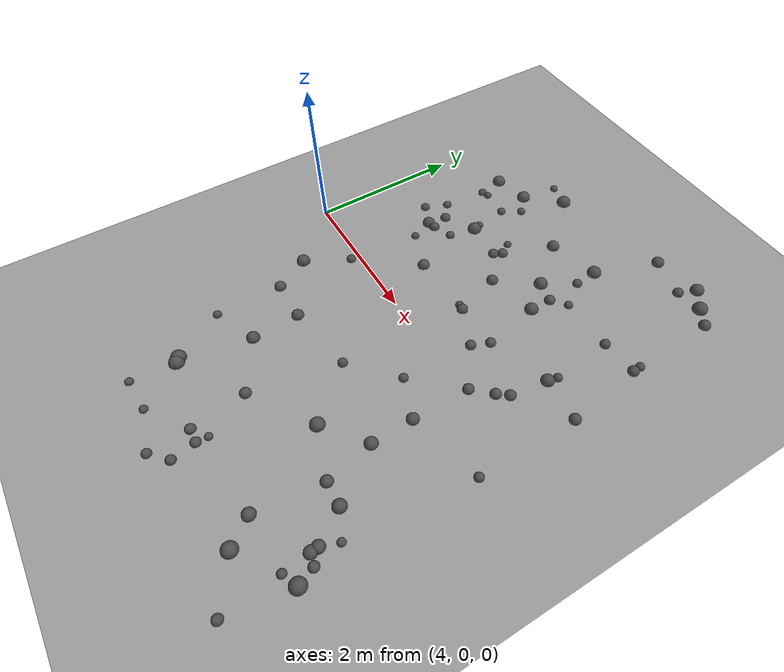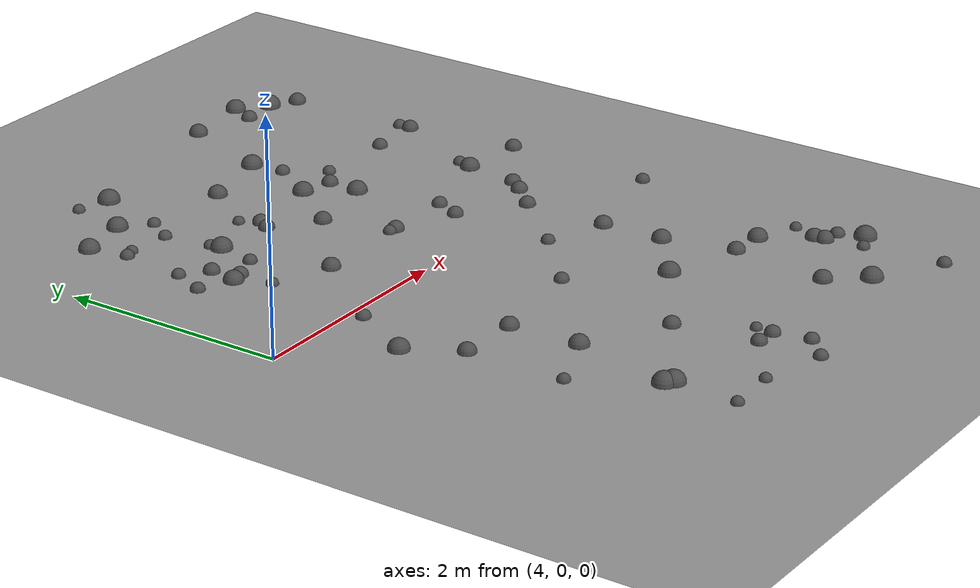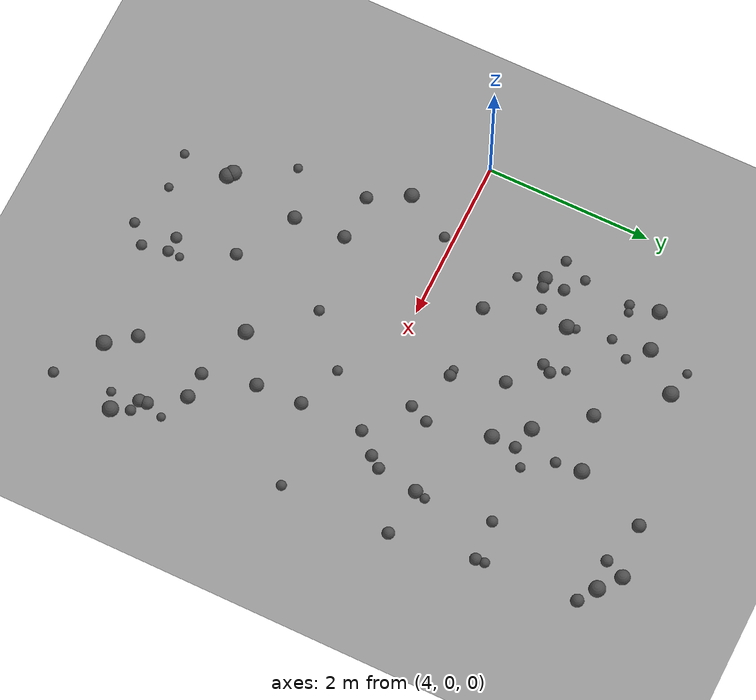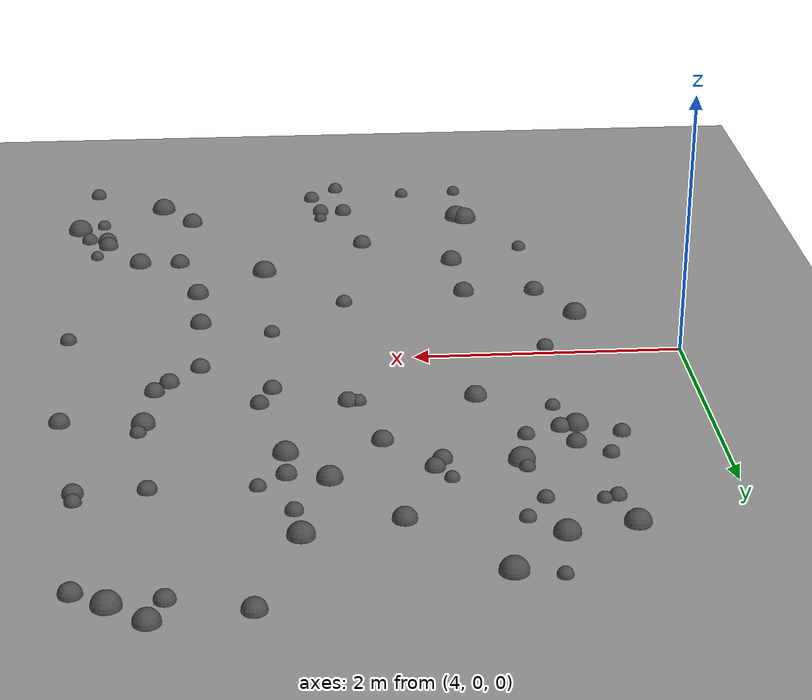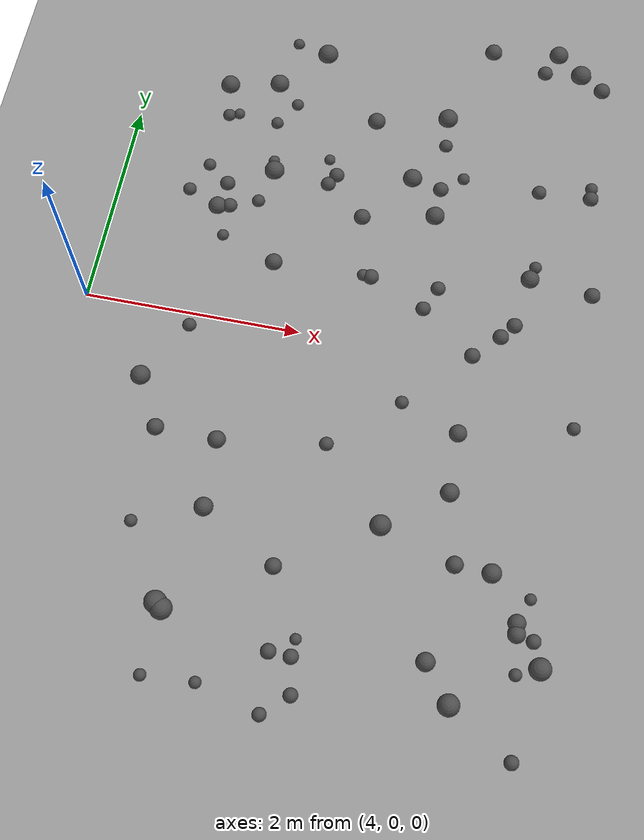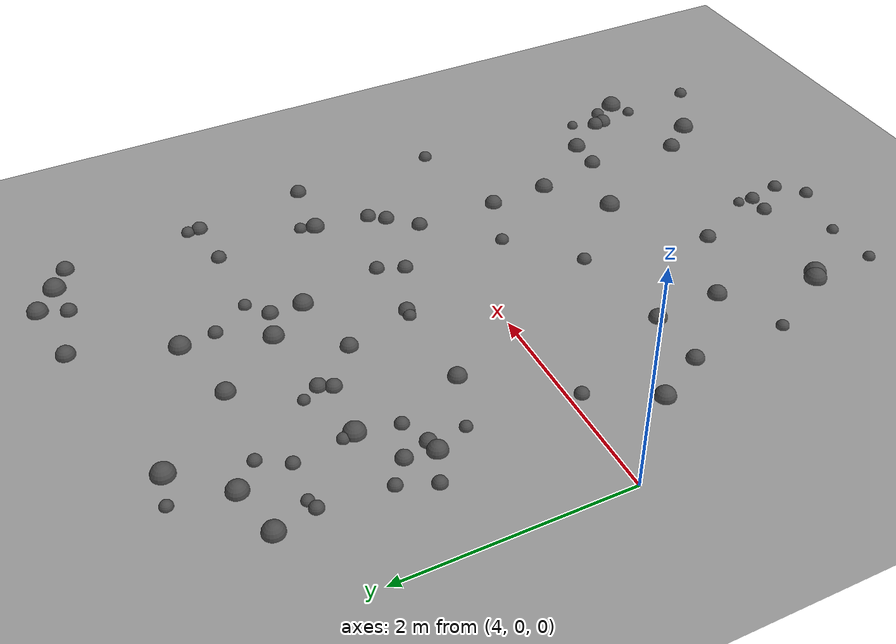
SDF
<sdf version="1.8">
 <world name="bumpy_world">
  <model name="ground_plane">
   <static>true</static>
   <link name="link">
    <collision name="collision">
     <geometry><plane><normal>0 0 1</normal><size>100 100</size></plane></geometry>
    </collision>
    <visual name="visual">
     <geometry><plane><normal>0 0 1</normal><size>100 100</size></plane></geometry>
     <material><ambient>0.6 0.6 0.6 1</ambient><diffuse>0.6 0.6 0.6 1</diffuse></material>
    </visual>
   </link>
  </model>
  <model name="bump_10">
   <static>true</static>
   <pose>8.074093619460154 -1.8913849508941816 0.0 0 0 0</pose>
   <link name="link">
    <collision name="collision">
     <geometry><sphere><radius>0.08665526799791093</radius></sphere></geometry>
     <surface><friction><ode><mu>100.0</mu><mu2>100.0</mu2></ode></friction></surface>
    </collision>
    <visual name="visual">
     <geometry><sphere><radius>0.08665526799791093</radius></sphere></geometry>
     <material><ambient>0.3 0.3 0.3 1</ambient><diffuse>0.3 0.3 0.3 1</diffuse></material>
    </visual>
   </link>
  </model>
  <model name="bump_23">
   <static>true</static>
   <pose>7.207527420495198 1.8874109743500078 0.0 0 0 0</pose>
   <link name="link">
    <collision name="collision">
     <geometry><sphere><radius>0.057677577920670714</radius></sphere></geometry>
     <surface><friction><ode><mu>100.0</mu><mu2>100.0</mu2></ode></friction></surface>
    </collision>
    <visual name="visual">
     <geometry><sphere><radius>0.057677577920670714</radius></sphere></geometry>
     <material><ambient>0.3 0.3 0.3 1</ambient><diffuse>0.3 0.3 0.3 1</diffuse></material>
    </visual>
   </link>
  </model>
  <model name="bump_25">
   <static>true</static>
   <pose>6.462320101021629 -1.0121938561316322 0.0 0 0 0</pose>
   <link name="link">
    <collision name="collision">
     <geometry><sphere><radius>0.0638348004299918</radius></sphere></geometry>
     <surface><friction><ode><mu>100.0</mu><mu2>100.0</mu2></ode></friction></surface>
    </collision>
    <visual name="visual">
     <geometry><sphere><radius>0.0638348004299918</radius></sphere></geometry>
     <material><ambient>0.3 0.3 0.3 1</ambient><diffuse>0.3 0.3 0.3 1</diffuse></material>
    </visual>
   </link>
  </model>
  <model name="bump_27">
   <static>true</static>
   <pose>5.0046693365978046 1.4117150593232077 0.0 0 0 0</pose>
   <link name="link">
    <collision name="collision">
     <geometry><sphere><radius>0.07152536064476334</radius></sphere></geometry>
     <surface><friction><ode><mu>100.0</mu><mu2>100.0</mu2></ode></friction></surface>
    </collision>
    <visual name="visual">
     <geometry><sphere><radius>0.07152536064476334</radius></sphere></geometry>
     <material><ambient>0.3 0.3 0.3 1</ambient><diffuse>0.3 0.3 0.3 1</diffuse></material>
    </visual>
   </link>
  </model>
  <model name="bump_29">
   <static>true</static>
   <pose>8.472127452633984 -3.4096233397645346 0.0 0 0 0</pose>
   <link name="link">
    <collision name="collision">
     <geometry><sphere><radius>0.06352596708151205</radius></sphere></geometry>
     <surface><friction><ode><mu>100.0</mu><mu2>100.0</mu2></ode></friction></surface>
    </collision>
    <visual name="visual">
     <geometry><sphere><radius>0.06352596708151205</radius></sphere></geometry>
     <material><ambient>0.3 0.3 0.3 1</ambient><diffuse>0.3 0.3 0.3 1</diffuse></material>
    </visual>
   </link>
  </model>
  <model name="bump_30">
   <static>true</static>
   <pose>8.592691148763425 -2.618579676732703 0.0 0 0 0</pose>
   <link name="link">
    <collision name="collision">
     <geometry><sphere><radius>0.09846012316630356</radius></sphere></geometry>
     <surface><friction><ode><mu>100.0</mu><mu2>100.0</mu2></ode></friction></surface>
    </collision>
    <visual name="visual">
     <geometry><sphere><radius>0.09846012316630356</radius></sphere></geometry>
     <material><ambient>0.3 0.3 0.3 1</ambient><diffuse>0.3 0.3 0.3 1</diffuse></material>
    </visual>
   </link>
  </model>
  <model name="bump_31">
   <static>true</static>
   <pose>5.909472135789189 1.853494488348181 0.0 0 0 0</pose>
   <link name="link">
    <collision name="collision">
     <geometry><sphere><radius>0.052269502112679125</radius></sphere></geometry>
     <surface><friction><ode><mu>100.0</mu><mu2>100.0</mu2></ode></friction></surface>
    </collision>
    <visual name="visual">
     <geometry><sphere><radius>0.052269502112679125</radius></sphere></geometry>
     <material><ambient>0.3 0.3 0.3 1</ambient><diffuse>0.3 0.3 0.3 1</diffuse></material>
    </visual>
   </link>
  </model>
  <model name="bump_40">
   <static>true</static>
   <pose>7.81064455543238 0.3085803133527678 0.0 0 0 0</pose>
   <link name="link">
    <collision name="collision">
     <geometry><sphere><radius>0.07399396648756375</radius></sphere></geometry>
     <surface><friction><ode><mu>100.0</mu><mu2>100.0</mu2></ode></friction></surface>
    </collision>
    <visual name="visual">
     <geometry><sphere><radius>0.07399396648756375</radius></sphere></geometry>
     <material><ambient>0.3 0.3 0.3 1</ambient><diffuse>0.3 0.3 0.3 1</diffuse></material>
    </visual>
   </link>
  </model>
  <model name="bump_44">
   <static>true</static>
   <pose>7.905633032826282 3.4776121564256206 0.0 0 0 0</pose>
   <link name="link">
    <collision name="collision">
     <geometry><sphere><radius>0.09104344656485358</radius></sphere></geometry>
     <surface><friction><ode><mu>100.0</mu><mu2>100.0</mu2></ode></friction></surface>
    </collision>
    <visual name="visual">
     <geometry><sphere><radius>0.09104344656485358</radius></sphere></geometry>
     <material><ambient>0.3 0.3 0.3 1</ambient><diffuse>0.3 0.3 0.3 1</diffuse></material>
    </visual>
   </link>
  </model>
  <model name="bump_49">
   <static>true</static>
   <pose>7.652648440351816 -2.7402711798300925 0.0 0 0 0</pose>
   <link name="link">
    <collision name="collision">
     <geometry><sphere><radius>0.08290568650594414</radius></sphere></geometry>
     <surface><friction><ode><mu>100.0</mu><mu2>100.0</mu2></ode></friction></surface>
    </collision>
    <visual name="visual">
     <geometry><sphere><radius>0.08290568650594414</radius></sphere></geometry>
     <material><ambient>0.3 0.3 0.3 1</ambient><diffuse>0.3 0.3 0.3 1</diffuse></material>
    </visual>
   </link>
  </model>
  <model name="bump_58">
   <static>true</static>
   <pose>5.335336507484605 1.2789221906068722 0.0 0 0 0</pose>
   <link name="link">
    <collision name="collision">
     <geometry><sphere><radius>0.06108071147254923</radius></sphere></geometry>
     <surface><friction><ode><mu>100.0</mu><mu2>100.0</mu2></ode></friction></surface>
    </collision>
    <visual name="visual">
     <geometry><sphere><radius>0.06108071147254923</radius></sphere></geometry>
     <material><ambient>0.3 0.3 0.3 1</ambient><diffuse>0.3 0.3 0.3 1</diffuse></material>
    </visual>
   </link>
  </model>
  <model name="bump_59">
   <static>true</static>
   <pose>8.580519923631055 -0.45433019315059475 0.0 0 0 0</pose>
   <link name="link">
    <collision name="collision">
     <geometry><sphere><radius>0.06195867709120054</radius></sphere></geometry>
     <surface><friction><ode><mu>100.0</mu><mu2>100.0</mu2></ode></friction></surface>
    </collision>
    <visual name="visual">
     <geometry><sphere><radius>0.06195867709120054</radius></sphere></geometry>
     <material><ambient>0.3 0.3 0.3 1</ambient><diffuse>0.3 0.3 0.3 1</diffuse></material>
    </visual>
   </link>
  </model>
  <model name="bump_71">
   <static>true</static>
   <pose>6.4606164604068335 0.6933020968495835 0.0 0 0 0</pose>
   <link name="link">
    <collision name="collision">
     <geometry><sphere><radius>0.056842116591623304</radius></sphere></geometry>
     <surface><friction><ode><mu>100.0</mu><mu2>100.0</mu2></ode></friction></surface>
    </collision>
    <visual name="visual">
     <geometry><sphere><radius>0.056842116591623304</radius></sphere></geometry>
     <material><ambient>0.3 0.3 0.3 1</ambient><diffuse>0.3 0.3 0.3 1</diffuse></material>
    </visual>
   </link>
  </model>
  <model name="bump_74">
   <static>true</static>
   <pose>7.802795040569261 3.2390802744916227 0.0 0 0 0</pose>
   <link name="link">
    <collision name="collision">
     <geometry><sphere><radius>0.07205433554057636</radius></sphere></geometry>
     <surface><friction><ode><mu>100.0</mu><mu2>100.0</mu2></ode></friction></surface>
    </collision>
    <visual name="visual">
     <geometry><sphere><radius>0.07205433554057636</radius></sphere></geometry>
     <material><ambient>0.3 0.3 0.3 1</ambient><diffuse>0.3 0.3 0.3 1</diffuse></material>
    </visual>
   </link>
  </model>
  <model name="bump_76">
   <static>true</static>
   <pose>4.846616131018106 2.1660713006287935 0.0 0 0 0</pose>
   <link name="link">
    <collision name="collision">
     <geometry><sphere><radius>0.06079181387232311</radius></sphere></geometry>
     <surface><friction><ode><mu>100.0</mu><mu2>100.0</mu2></ode></friction></surface>
    </collision>
    <visual name="visual">
     <geometry><sphere><radius>0.06079181387232311</radius></sphere></geometry>
     <material><ambient>0.3 0.3 0.3 1</ambient><diffuse>0.3 0.3 0.3 1</diffuse></material>
    </visual>
   </link>
  </model>
  <model name="bump_80">
   <static>true</static>
   <pose>5.412592499783626 1.6367212688419084 0.0 0 0 0</pose>
   <link name="link">
    <collision name="collision">
     <geometry><sphere><radius>0.09444418449000878</radius></sphere></geometry>
     <surface><friction><ode><mu>100.0</mu><mu2>100.0</mu2></ode></friction></surface>
    </collision>
    <visual name="visual">
     <geometry><sphere><radius>0.09444418449000878</radius></sphere></geometry>
     <material><ambient>0.3 0.3 0.3 1</ambient><diffuse>0.3 0.3 0.3 1</diffuse></material>
    </visual>
   </link>
  </model>
  <model name="bump_97">
   <static>true</static>
   <pose>7.583374575141839 -0.6921050108831559 0.0 0 0 0</pose>
   <link name="link">
    <collision name="collision">
     <geometry><sphere><radius>0.08082089302416347</radius></sphere></geometry>
     <surface><friction><ode><mu>100.0</mu><mu2>100.0</mu2></ode></friction></surface>
    </collision>
    <visual name="visual">
     <geometry><sphere><radius>0.08082089302416347</radius></sphere></geometry>
     <material><ambient>0.3 0.3 0.3 1</ambient><diffuse>0.3 0.3 0.3 1</diffuse></material>
    </visual>
   </link>
  </model>
  <model name="bump_102">
   <static>true</static>
   <pose>4.666229500769266 1.2810143154984628 0.0 0 0 0</pose>
   <link name="link">
    <collision name="collision">
     <geometry><sphere><radius>0.06313488530406552</radius></sphere></geometry>
     <surface><friction><ode><mu>100.0</mu><mu2>100.0</mu2></ode></friction></surface>
    </collision>
    <visual name="visual">
     <geometry><sphere><radius>0.06313488530406552</radius></sphere></geometry>
     <material><ambient>0.3 0.3 0.3 1</ambient><diffuse>0.3 0.3 0.3 1</diffuse></material>
    </visual>
   </link>
  </model>
  <model name="bump_118">
   <static>true</static>
   <pose>8.50651105231199 -2.4027852145048336 0.0 0 0 0</pose>
   <link name="link">
    <collision name="collision">
     <geometry><sphere><radius>0.06479531200945578</radius></sphere></geometry>
     <surface><friction><ode><mu>100.0</mu><mu2>100.0</mu2></ode></friction></surface>
    </collision>
    <visual name="visual">
     <geometry><sphere><radius>0.06479531200945578</radius></sphere></geometry>
     <material><ambient>0.3 0.3 0.3 1</ambient><diffuse>0.3 0.3 0.3 1</diffuse></material>
    </visual>
   </link>
  </model>
  <model name="bump_119">
   <static>true</static>
   <pose>6.242555385783348 -2.1849332941631188 0.0 0 0 0</pose>
   <link name="link">
    <collision name="collision">
     <geometry><sphere><radius>0.07446026072724944</radius></sphere></geometry>
     <surface><friction><ode><mu>100.0</mu><mu2>100.0</mu2></ode></friction></surface>
    </collision>
    <visual name="visual">
     <geometry><sphere><radius>0.07446026072724944</radius></sphere></geometry>
     <material><ambient>0.3 0.3 0.3 1</ambient><diffuse>0.3 0.3 0.3 1</diffuse></material>
    </visual>
   </link>
  </model>
  <model name="bump_123">
   <static>true</static>
   <pose>6.334554217321676 1.2950318489358619 0.0 0 0 0</pose>
   <link name="link">
    <collision name="collision">
     <geometry><sphere><radius>0.0777832098189151</radius></sphere></geometry>
     <surface><friction><ode><mu>100.0</mu><mu2>100.0</mu2></ode></friction></surface>
    </collision>
    <visual name="visual">
     <geometry><sphere><radius>0.0777832098189151</radius></sphere></geometry>
     <material><ambient>0.3 0.3 0.3 1</ambient><diffuse>0.3 0.3 0.3 1</diffuse></material>
    </visual>
   </link>
  </model>
  <model name="bump_127">
   <static>true</static>
   <pose>6.397028429441429 -3.423974323847178 0.0 0 0 0</pose>
   <link name="link">
    <collision name="collision">
     <geometry><sphere><radius>0.061660296436495565</radius></sphere></geometry>
     <surface><friction><ode><mu>100.0</mu><mu2>100.0</mu2></ode></friction></surface>
    </collision>
    <visual name="visual">
     <geometry><sphere><radius>0.061660296436495565</radius></sphere></geometry>
     <material><ambient>0.3 0.3 0.3 1</ambient><diffuse>0.3 0.3 0.3 1</diffuse></material>
    </visual>
   </link>
  </model>
  <model name="bump_129">
   <static>true</static>
   <pose>5.0793912085288 1.1779446406055012 0.0 0 0 0</pose>
   <link name="link">
    <collision name="collision">
     <geometry><sphere><radius>0.07080263250397179</radius></sphere></geometry>
     <surface><friction><ode><mu>100.0</mu><mu2>100.0</mu2></ode></friction></surface>
    </collision>
    <visual name="visual">
     <geometry><sphere><radius>0.07080263250397179</radius></sphere></geometry>
     <material><ambient>0.3 0.3 0.3 1</ambient><diffuse>0.3 0.3 0.3 1</diffuse></material>
    </visual>
   </link>
  </model>
  <model name="bump_130">
   <static>true</static>
   <pose>8.154147779753945 3.2805430533662303 0.0 0 0 0</pose>
   <link name="link">
    <collision name="collision">
     <geometry><sphere><radius>0.0996617859046027</radius></sphere></geometry>
     <surface><friction><ode><mu>100.0</mu><mu2>100.0</mu2></ode></friction></surface>
    </collision>
    <visual name="visual">
     <geometry><sphere><radius>0.0996617859046027</radius></sphere></geometry>
     <material><ambient>0.3 0.3 0.3 1</ambient><diffuse>0.3 0.3 0.3 1</diffuse></material>
    </visual>
   </link>
  </model>
  <model name="bump_133">
   <static>true</static>
   <pose>8.34599416464543 -2.2750710171130977 0.0 0 0 0</pose>
   <link name="link">
    <collision name="collision">
     <geometry><sphere><radius>0.07880167004303433</radius></sphere></geometry>
     <surface><friction><ode><mu>100.0</mu><mu2>100.0</mu2></ode></friction></surface>
    </collision>
    <visual name="visual">
     <geometry><sphere><radius>0.07880167004303433</radius></sphere></geometry>
     <material><ambient>0.3 0.3 0.3 1</ambient><diffuse>0.3 0.3 0.3 1</diffuse></material>
    </visual>
   </link>
  </model>
  <model name="bump_137">
   <static>true</static>
   <pose>7.937825146182632 1.8777773332348842 0.0 0 0 0</pose>
   <link name="link">
    <collision name="collision">
     <geometry><sphere><radius>0.0680600910936127</radius></sphere></geometry>
     <surface><friction><ode><mu>100.0</mu><mu2>100.0</mu2></ode></friction></surface>
    </collision>
    <visual name="visual">
     <geometry><sphere><radius>0.0680600910936127</radius></sphere></geometry>
     <material><ambient>0.3 0.3 0.3 1</ambient><diffuse>0.3 0.3 0.3 1</diffuse></material>
    </visual>
   </link>
  </model>
  <model name="bump_141">
   <static>true</static>
   <pose>8.42071550649576 2.0119067204979117 0.0 0 0 0</pose>
   <link name="link">
    <collision name="collision">
     <geometry><sphere><radius>0.05986103594123608</radius></sphere></geometry>
     <surface><friction><ode><mu>100.0</mu><mu2>100.0</mu2></ode></friction></surface>
    </collision>
    <visual name="visual">
     <geometry><sphere><radius>0.05986103594123608</radius></sphere></geometry>
     <material><ambient>0.3 0.3 0.3 1</ambient><diffuse>0.3 0.3 0.3 1</diffuse></material>
    </visual>
   </link>
  </model>
  <model name="bump_143">
   <static>true</static>
   <pose>8.377806293652906 3.137256774606607 0.0 0 0 0</pose>
   <link name="link">
    <collision name="collision">
     <geometry><sphere><radius>0.07940464354140402</radius></sphere></geometry>
     <surface><friction><ode><mu>100.0</mu><mu2>100.0</mu2></ode></friction></surface>
    </collision>
    <visual name="visual">
     <geometry><sphere><radius>0.07940464354140402</radius></sphere></geometry>
     <material><ambient>0.3 0.3 0.3 1</ambient><diffuse>0.3 0.3 0.3 1</diffuse></material>
    </visual>
   </link>
  </model>
  <model name="bump_148">
   <static>true</static>
   <pose>5.334013743000953 -2.6761813966434382 0.0 0 0 0</pose>
   <link name="link">
    <collision name="collision">
     <geometry><sphere><radius>0.09901523135792735</radius></sphere></geometry>
     <surface><friction><ode><mu>100.0</mu><mu2>100.0</mu2></ode></friction></surface>
    </collision>
    <visual name="visual">
     <geometry><sphere><radius>0.09901523135792735</radius></sphere></geometry>
     <material><ambient>0.3 0.3 0.3 1</ambient><diffuse>0.3 0.3 0.3 1</diffuse></material>
    </visual>
   </link>
  </model>
  <model name="bump_149">
   <static>true</static>
   <pose>5.536484798136928 -1.7828813818273441 0.0 0 0 0</pose>
   <link name="link">
    <collision name="collision">
     <geometry><sphere><radius>0.08549462478581492</radius></sphere></geometry>
     <surface><friction><ode><mu>100.0</mu><mu2>100.0</mu2></ode></friction></surface>
    </collision>
    <visual name="visual">
     <geometry><sphere><radius>0.08549462478581492</radius></sphere></geometry>
     <material><ambient>0.3 0.3 0.3 1</ambient><diffuse>0.3 0.3 0.3 1</diffuse></material>
    </visual>
   </link>
  </model>
  <model name="bump_152">
   <static>true</static>
   <pose>5.395568251855626 -2.722549533322223 0.0 0 0 0</pose>
   <link name="link">
    <collision name="collision">
     <geometry><sphere><radius>0.09834903578196255</radius></sphere></geometry>
     <surface><friction><ode><mu>100.0</mu><mu2>100.0</mu2></ode></friction></surface>
    </collision>
    <visual name="visual">
     <geometry><sphere><radius>0.09834903578196255</radius></sphere></geometry>
     <material><ambient>0.3 0.3 0.3 1</ambient><diffuse>0.3 0.3 0.3 1</diffuse></material>
    </visual>
   </link>
  </model>
  <model name="bump_156">
   <static>true</static>
   <pose>7.264011164824802 3.3886988614626894 0.0 0 0 0</pose>
   <link name="link">
    <collision name="collision">
     <geometry><sphere><radius>0.08366467640635986</radius></sphere></geometry>
     <surface><friction><ode><mu>100.0</mu><mu2>100.0</mu2></ode></friction></surface>
    </collision>
    <visual name="visual">
     <geometry><sphere><radius>0.08366467640635986</radius></sphere></geometry>
     <material><ambient>0.3 0.3 0.3 1</ambient><diffuse>0.3 0.3 0.3 1</diffuse></material>
    </visual>
   </link>
  </model>
  <model name="bump_163">
   <static>true</static>
   <pose>4.945016074925114 -1.1441326181079066 0.0 0 0 0</pose>
   <link name="link">
    <collision name="collision">
     <geometry><sphere><radius>0.07789518117941927</radius></sphere></geometry>
     <surface><friction><ode><mu>100.0</mu><mu2>100.0</mu2></ode></friction></surface>
    </collision>
    <visual name="visual">
     <geometry><sphere><radius>0.07789518117941927</radius></sphere></geometry>
     <material><ambient>0.3 0.3 0.3 1</ambient><diffuse>0.3 0.3 0.3 1</diffuse></material>
    </visual>
   </link>
  </model>
  <model name="bump_166">
   <static>true</static>
   <pose>7.899002617954483 -3.054064054231187 0.0 0 0 0</pose>
   <link name="link">
    <collision name="collision">
     <geometry><sphere><radius>0.09660854925801338</radius></sphere></geometry>
     <surface><friction><ode><mu>100.0</mu><mu2>100.0</mu2></ode></friction></surface>
    </collision>
    <visual name="visual">
     <geometry><sphere><radius>0.09660854925801338</radius></sphere></geometry>
     <material><ambient>0.3 0.3 0.3 1</ambient><diffuse>0.3 0.3 0.3 1</diffuse></material>
    </visual>
   </link>
  </model>
  <model name="bump_176">
   <static>true</static>
   <pose>6.270758757481193 2.369440497285918 0.0 0 0 0</pose>
   <link name="link">
    <collision name="collision">
     <geometry><sphere><radius>0.08441713262509012</radius></sphere></geometry>
     <surface><friction><ode><mu>100.0</mu><mu2>100.0</mu2></ode></friction></surface>
    </collision>
    <visual name="visual">
     <geometry><sphere><radius>0.08441713262509012</radius></sphere></geometry>
     <material><ambient>0.3 0.3 0.3 1</ambient><diffuse>0.3 0.3 0.3 1</diffuse></material>
    </visual>
   </link>
  </model>
  <model name="bump_177">
   <static>true</static>
   <pose>5.504822116595801 -1.1564351253145055 0.0 0 0 0</pose>
   <link name="link">
    <collision name="collision">
     <geometry><sphere><radius>0.08113765736617604</radius></sphere></geometry>
     <surface><friction><ode><mu>100.0</mu><mu2>100.0</mu2></ode></friction></surface>
    </collision>
    <visual name="visual">
     <geometry><sphere><radius>0.08113765736617604</radius></sphere></geometry>
     <material><ambient>0.3 0.3 0.3 1</ambient><diffuse>0.3 0.3 0.3 1</diffuse></material>
    </visual>
   </link>
  </model>
  <model name="bump_180">
   <static>true</static>
   <pose>5.32474328857374 2.16492982308175 0.0 0 0 0</pose>
   <link name="link">
    <collision name="collision">
     <geometry><sphere><radius>0.058632753925676025</radius></sphere></geometry>
     <surface><friction><ode><mu>100.0</mu><mu2>100.0</mu2></ode></friction></surface>
    </collision>
    <visual name="visual">
     <geometry><sphere><radius>0.058632753925676025</radius></sphere></geometry>
     <material><ambient>0.3 0.3 0.3 1</ambient><diffuse>0.3 0.3 0.3 1</diffuse></material>
    </visual>
   </link>
  </model>
  <model name="bump_182">
   <static>true</static>
   <pose>7.012480864367555 1.731973633405853 0.0 0 0 0</pose>
   <link name="link">
    <collision name="collision">
     <geometry><sphere><radius>0.07247758301328874</radius></sphere></geometry>
     <surface><friction><ode><mu>100.0</mu><mu2>100.0</mu2></ode></friction></surface>
    </collision>
    <visual name="visual">
     <geometry><sphere><radius>0.07247758301328874</radius></sphere></geometry>
     <material><ambient>0.3 0.3 0.3 1</ambient><diffuse>0.3 0.3 0.3 1</diffuse></material>
    </visual>
   </link>
  </model>
  <model name="bump_186">
   <static>true</static>
   <pose>7.166748598560416 0.686210501516209 0.0 0 0 0</pose>
   <link name="link">
    <collision name="collision">
     <geometry><sphere><radius>0.0681950038603595</radius></sphere></geometry>
     <surface><friction><ode><mu>100.0</mu><mu2>100.0</mu2></ode></friction></surface>
    </collision>
    <visual name="visual">
     <geometry><sphere><radius>0.0681950038603595</radius></sphere></geometry>
     <material><ambient>0.3 0.3 0.3 1</ambient><diffuse>0.3 0.3 0.3 1</diffuse></material>
    </visual>
   </link>
  </model>
  <model name="bump_188">
   <static>true</static>
   <pose>4.689600896393222 -0.6837588958394805 0.0 0 0 0</pose>
   <link name="link">
    <collision name="collision">
     <geometry><sphere><radius>0.09098302293460733</radius></sphere></geometry>
     <surface><friction><ode><mu>100.0</mu><mu2>100.0</mu2></ode></friction></surface>
    </collision>
    <visual name="visual">
     <geometry><sphere><radius>0.09098302293460733</radius></sphere></geometry>
     <material><ambient>0.3 0.3 0.3 1</ambient><diffuse>0.3 0.3 0.3 1</diffuse></material>
    </visual>
   </link>
  </model>
  <model name="bump_191">
   <static>true</static>
   <pose>8.42693749313121 1.902176239982607 0.0 0 0 0</pose>
   <link name="link">
    <collision name="collision">
     <geometry><sphere><radius>0.07326916341438071</radius></sphere></geometry>
     <surface><friction><ode><mu>100.0</mu><mu2>100.0</mu2></ode></friction></surface>
    </collision>
    <visual name="visual">
     <geometry><sphere><radius>0.07326916341438071</radius></sphere></geometry>
     <material><ambient>0.3 0.3 0.3 1</ambient><diffuse>0.3 0.3 0.3 1</diffuse></material>
    </visual>
   </link>
  </model>
  <model name="bump_193">
   <static>true</static>
   <pose>8.357293860277448 -2.3668497515637146 0.0 0 0 0</pose>
   <link name="link">
    <collision name="collision">
     <geometry><sphere><radius>0.07925697141572498</radius></sphere></geometry>
     <surface><friction><ode><mu>100.0</mu><mu2>100.0</mu2></ode></friction></surface>
    </collision>
    <visual name="visual">
     <geometry><sphere><radius>0.07925697141572498</radius></sphere></geometry>
     <material><ambient>0.3 0.3 0.3 1</ambient><diffuse>0.3 0.3 0.3 1</diffuse></material>
    </visual>
   </link>
  </model>
  <model name="bump_204">
   <static>true</static>
   <pose>8.429684028940141 -2.0524920424880513 0.0 0 0 0</pose>
   <link name="link">
    <collision name="collision">
     <geometry><sphere><radius>0.051839023061610506</radius></sphere></geometry>
     <surface><friction><ode><mu>100.0</mu><mu2>100.0</mu2></ode></friction></surface>
    </collision>
    <visual name="visual">
     <geometry><sphere><radius>0.051839023061610506</radius></sphere></geometry>
     <material><ambient>0.3 0.3 0.3 1</ambient><diffuse>0.3 0.3 0.3 1</diffuse></material>
    </visual>
   </link>
  </model>
  <model name="bump_212">
   <static>true</static>
   <pose>4.939563372913616 2.1977864517206935 0.0 0 0 0</pose>
   <link name="link">
    <collision name="collision">
     <geometry><sphere><radius>0.052817728638187476</radius></sphere></geometry>
     <surface><friction><ode><mu>100.0</mu><mu2>100.0</mu2></ode></friction></surface>
    </collision>
    <visual name="visual">
     <geometry><sphere><radius>0.052817728638187476</radius></sphere></geometry>
     <material><ambient>0.3 0.3 0.3 1</ambient><diffuse>0.3 0.3 0.3 1</diffuse></material>
    </visual>
   </link>
  </model>
  <model name="bump_214">
   <static>true</static>
   <pose>5.251562758979899 2.6172055099731804 0.0 0 0 0</pose>
   <link name="link">
    <collision name="collision">
     <geometry><sphere><radius>0.09198389067937467</radius></sphere></geometry>
     <surface><friction><ode><mu>100.0</mu><mu2>100.0</mu2></ode></friction></surface>
    </collision>
    <visual name="visual">
     <geometry><sphere><radius>0.09198389067937467</radius></sphere></geometry>
     <material><ambient>0.3 0.3 0.3 1</ambient><diffuse>0.3 0.3 0.3 1</diffuse></material>
    </visual>
   </link>
  </model>
  <model name="bump_217">
   <static>true</static>
   <pose>8.398608288232403 -2.705549219919591 0.0 0 0 0</pose>
   <link name="link">
    <collision name="collision">
     <geometry><sphere><radius>0.05582425209133147</radius></sphere></geometry>
     <surface><friction><ode><mu>100.0</mu><mu2>100.0</mu2></ode></friction></surface>
    </collision>
    <visual name="visual">
     <geometry><sphere><radius>0.05582425209133147</radius></sphere></geometry>
     <material><ambient>0.3 0.3 0.3 1</ambient><diffuse>0.3 0.3 0.3 1</diffuse></material>
    </visual>
   </link>
  </model>
  <model name="bump_221">
   <static>true</static>
   <pose>4.951919842008193 -2.025109472384977 0.0 0 0 0</pose>
   <link name="link">
    <collision name="collision">
     <geometry><sphere><radius>0.056204236956117655</radius></sphere></geometry>
     <surface><friction><ode><mu>100.0</mu><mu2>100.0</mu2></ode></friction></surface>
    </collision>
    <visual name="visual">
     <geometry><sphere><radius>0.056204236956117655</radius></sphere></geometry>
     <material><ambient>0.3 0.3 0.3 1</ambient><diffuse>0.3 0.3 0.3 1</diffuse></material>
    </visual>
   </link>
  </model>
  <model name="bump_241">
   <static>true</static>
   <pose>7.916524727125511 0.44582480375271816 0.0 0 0 0</pose>
   <link name="link">
    <collision name="collision">
     <geometry><sphere><radius>0.07318243098483312</radius></sphere></geometry>
     <surface><friction><ode><mu>100.0</mu><mu2>100.0</mu2></ode></friction></surface>
    </collision>
    <visual name="visual">
     <geometry><sphere><radius>0.07318243098483312</radius></sphere></geometry>
     <material><ambient>0.3 0.3 0.3 1</ambient><diffuse>0.3 0.3 0.3 1</diffuse></material>
    </visual>
   </link>
  </model>
  <model name="bump_244">
   <static>true</static>
   <pose>5.3624480945827955 -3.297366563978932 0.0 0 0 0</pose>
   <link name="link">
    <collision name="collision">
     <geometry><sphere><radius>0.05455376840028795</radius></sphere></geometry>
     <surface><friction><ode><mu>100.0</mu><mu2>100.0</mu2></ode></friction></surface>
    </collision>
    <visual name="visual">
     <geometry><sphere><radius>0.05455376840028795</radius></sphere></geometry>
     <material><ambient>0.3 0.3 0.3 1</ambient><diffuse>0.3 0.3 0.3 1</diffuse></material>
    </visual>
   </link>
  </model>
  <model name="bump_246">
   <static>true</static>
   <pose>8.018409754533375 1.073381772105214 0.0 0 0 0</pose>
   <link name="link">
    <collision name="collision">
     <geometry><sphere><radius>0.058139655479100445</radius></sphere></geometry>
     <surface><friction><ode><mu>100.0</mu><mu2>100.0</mu2></ode></friction></surface>
    </collision>
    <visual name="visual">
     <geometry><sphere><radius>0.058139655479100445</radius></sphere></geometry>
     <material><ambient>0.3 0.3 0.3 1</ambient><diffuse>0.3 0.3 0.3 1</diffuse></material>
    </visual>
   </link>
  </model>
  <model name="bump_251">
   <static>true</static>
   <pose>5.617701324760318 0.6663093906050985 0.0 0 0 0</pose>
   <link name="link">
    <collision name="collision">
     <geometry><sphere><radius>0.08114152437901108</radius></sphere></geometry>
     <surface><friction><ode><mu>100.0</mu><mu2>100.0</mu2></ode></friction></surface>
    </collision>
    <visual name="visual">
     <geometry><sphere><radius>0.08114152437901108</radius></sphere></geometry>
     <material><ambient>0.3 0.3 0.3 1</ambient><diffuse>0.3 0.3 0.3 1</diffuse></material>
    </visual>
   </link>
  </model>
  <model name="bump_256">
   <static>true</static>
   <pose>4.7903821625955985 1.5804138173504398 0.0 0 0 0</pose>
   <link name="link">
    <collision name="collision">
     <geometry><sphere><radius>0.059612341227074865</radius></sphere></geometry>
     <surface><friction><ode><mu>100.0</mu><mu2>100.0</mu2></ode></friction></surface>
    </collision>
    <visual name="visual">
     <geometry><sphere><radius>0.059612341227074865</radius></sphere></geometry>
     <material><ambient>0.3 0.3 0.3 1</ambient><diffuse>0.3 0.3 0.3 1</diffuse></material>
    </visual>
   </link>
  </model>
  <model name="bump_257">
   <static>true</static>
   <pose>7.985221398182544 0.9432509992707745 0.0 0 0 0</pose>
   <link name="link">
    <collision name="collision">
     <geometry><sphere><radius>0.08627929765858416</radius></sphere></geometry>
     <surface><friction><ode><mu>100.0</mu><mu2>100.0</mu2></ode></friction></surface>
    </collision>
    <visual name="visual">
     <geometry><sphere><radius>0.08627929765858416</radius></sphere></geometry>
     <material><ambient>0.3 0.3 0.3 1</ambient><diffuse>0.3 0.3 0.3 1</diffuse></material>
    </visual>
   </link>
  </model>
  <model name="bump_260">
   <static>true</static>
   <pose>7.043116923019785 -0.49642754537346967 0.0 0 0 0</pose>
   <link name="link">
    <collision name="collision">
     <geometry><sphere><radius>0.06083024713048938</radius></sphere></geometry>
     <surface><friction><ode><mu>100.0</mu><mu2>100.0</mu2></ode></friction></surface>
    </collision>
    <visual name="visual">
     <geometry><sphere><radius>0.06083024713048938</radius></sphere></geometry>
     <material><ambient>0.3 0.3 0.3 1</ambient><diffuse>0.3 0.3 0.3 1</diffuse></material>
    </visual>
   </link>
  </model>
  <model name="bump_269">
   <static>true</static>
   <pose>5.947795264090061 1.5875380215081574 0.0 0 0 0</pose>
   <link name="link">
    <collision name="collision">
     <geometry><sphere><radius>0.0703931661071239</radius></sphere></geometry>
     <surface><friction><ode><mu>100.0</mu><mu2>100.0</mu2></ode></friction></surface>
    </collision>
    <visual name="visual">
     <geometry><sphere><radius>0.0703931661071239</radius></sphere></geometry>
     <material><ambient>0.3 0.3 0.3 1</ambient><diffuse>0.3 0.3 0.3 1</diffuse></material>
    </visual>
   </link>
  </model>
  <model name="bump_273">
   <static>true</static>
   <pose>6.3580608963039715 -2.9031807101528013 0.0 0 0 0</pose>
   <link name="link">
    <collision name="collision">
     <geometry><sphere><radius>0.06850419009617485</radius></sphere></geometry>
     <surface><friction><ode><mu>100.0</mu><mu2>100.0</mu2></ode></friction></surface>
    </collision>
    <visual name="visual">
     <geometry><sphere><radius>0.06850419009617485</radius></sphere></geometry>
     <material><ambient>0.3 0.3 0.3 1</ambient><diffuse>0.3 0.3 0.3 1</diffuse></material>
    </visual>
   </link>
  </model>
  <model name="bump_279">
   <static>true</static>
   <pose>5.3404284252977785 3.1161053855807817 0.0 0 0 0</pose>
   <link name="link">
    <collision name="collision">
     <geometry><sphere><radius>0.05466419337918882</radius></sphere></geometry>
     <surface><friction><ode><mu>100.0</mu><mu2>100.0</mu2></ode></friction></surface>
    </collision>
    <visual name="visual">
     <geometry><sphere><radius>0.05466419337918882</radius></sphere></geometry>
     <material><ambient>0.3 0.3 0.3 1</ambient><diffuse>0.3 0.3 0.3 1</diffuse></material>
    </visual>
   </link>
  </model>
  <model name="bump_283">
   <static>true</static>
   <pose>7.6042576137983815 -1.2490979387853152 0.0 0 0 0</pose>
   <link name="link">
    <collision name="collision">
     <geometry><sphere><radius>0.08488338621682734</radius></sphere></geometry>
     <surface><friction><ode><mu>100.0</mu><mu2>100.0</mu2></ode></friction></surface>
    </collision>
    <visual name="visual">
     <geometry><sphere><radius>0.08488338621682734</radius></sphere></geometry>
     <material><ambient>0.3 0.3 0.3 1</ambient><diffuse>0.3 0.3 0.3 1</diffuse></material>
    </visual>
   </link>
  </model>
  <model name="bump_287">
   <static>true</static>
   <pose>5.088156468557014 0.8567221791644979 0.0 0 0 0</pose>
   <link name="link">
    <collision name="collision">
     <geometry><sphere><radius>0.05447236980447467</radius></sphere></geometry>
     <surface><friction><ode><mu>100.0</mu><mu2>100.0</mu2></ode></friction></surface>
    </collision>
    <visual name="visual">
     <geometry><sphere><radius>0.05447236980447467</radius></sphere></geometry>
     <material><ambient>0.3 0.3 0.3 1</ambient><diffuse>0.3 0.3 0.3 1</diffuse></material>
    </visual>
   </link>
  </model>
  <model name="bump_291">
   <static>true</static>
   <pose>7.7518284519590575 -1.877583801914077 0.0 0 0 0</pose>
   <link name="link">
    <collision name="collision">
     <geometry><sphere><radius>0.07720808526827741</radius></sphere></geometry>
     <surface><friction><ode><mu>100.0</mu><mu2>100.0</mu2></ode></friction></surface>
    </collision>
    <visual name="visual">
     <geometry><sphere><radius>0.07720808526827741</radius></sphere></geometry>
     <material><ambient>0.3 0.3 0.3 1</ambient><diffuse>0.3 0.3 0.3 1</diffuse></material>
    </visual>
   </link>
  </model>
  <model name="bump_293">
   <static>true</static>
   <pose>6.535543940705548 0.6862461425807318 0.0 0 0 0</pose>
   <link name="link">
    <collision name="collision">
     <geometry><sphere><radius>0.07337849152180849</radius></sphere></geometry>
     <surface><friction><ode><mu>100.0</mu><mu2>100.0</mu2></ode></friction></surface>
    </collision>
    <visual name="visual">
     <geometry><sphere><radius>0.07337849152180849</radius></sphere></geometry>
     <material><ambient>0.3 0.3 0.3 1</ambient><diffuse>0.3 0.3 0.3 1</diffuse></material>
    </visual>
   </link>
  </model>
  <model name="bump_303">
   <static>true</static>
   <pose>6.979422066286536 2.2201687760869877 0.0 0 0 0</pose>
   <link name="link">
    <collision name="collision">
     <geometry><sphere><radius>0.06370416461110817</radius></sphere></geometry>
     <surface><friction><ode><mu>100.0</mu><mu2>100.0</mu2></ode></friction></surface>
    </collision>
    <visual name="visual">
     <geometry><sphere><radius>0.06370416461110817</radius></sphere></geometry>
     <material><ambient>0.3 0.3 0.3 1</ambient><diffuse>0.3 0.3 0.3 1</diffuse></material>
    </visual>
   </link>
  </model>
  <model name="bump_307">
   <static>true</static>
   <pose>7.067786740323274 0.4557110983392989 0.0 0 0 0</pose>
   <link name="link">
    <collision name="collision">
     <geometry><sphere><radius>0.06965447293902477</radius></sphere></geometry>
     <surface><friction><ode><mu>100.0</mu><mu2>100.0</mu2></ode></friction></surface>
    </collision>
    <visual name="visual">
     <geometry><sphere><radius>0.06965447293902477</radius></sphere></geometry>
     <material><ambient>0.3 0.3 0.3 1</ambient><diffuse>0.3 0.3 0.3 1</diffuse></material>
    </visual>
   </link>
  </model>
  <model name="bump_311">
   <static>true</static>
   <pose>6.559718306213223 -2.7612657302527426 0.0 0 0 0</pose>
   <link name="link">
    <collision name="collision">
     <geometry><sphere><radius>0.050673926084746586</radius></sphere></geometry>
     <surface><friction><ode><mu>100.0</mu><mu2>100.0</mu2></ode></friction></surface>
    </collision>
    <visual name="visual">
     <geometry><sphere><radius>0.050673926084746586</radius></sphere></geometry>
     <material><ambient>0.3 0.3 0.3 1</ambient><diffuse>0.3 0.3 0.3 1</diffuse></material>
    </visual>
   </link>
  </model>
  <model name="bump_315">
   <static>true</static>
   <pose>7.068862613159696 -1.6539353094705629 0.0 0 0 0</pose>
   <link name="link">
    <collision name="collision">
     <geometry><sphere><radius>0.09492836889407294</radius></sphere></geometry>
     <surface><friction><ode><mu>100.0</mu><mu2>100.0</mu2></ode></friction></surface>
    </collision>
    <visual name="visual">
     <geometry><sphere><radius>0.09492836889407294</radius></sphere></geometry>
     <material><ambient>0.3 0.3 0.3 1</ambient><diffuse>0.3 0.3 0.3 1</diffuse></material>
    </visual>
   </link>
  </model>
  <model name="bump_317">
   <static>true</static>
   <pose>5.476630979193495 2.4090660354508016 0.0 0 0 0</pose>
   <link name="link">
    <collision name="collision">
     <geometry><sphere><radius>0.05802893439483835</radius></sphere></geometry>
     <surface><friction><ode><mu>100.0</mu><mu2>100.0</mu2></ode></friction></surface>
    </collision>
    <visual name="visual">
     <geometry><sphere><radius>0.05802893439483835</radius></sphere></geometry>
     <material><ambient>0.3 0.3 0.3 1</ambient><diffuse>0.3 0.3 0.3 1</diffuse></material>
    </visual>
   </link>
  </model>
  <model name="bump_323">
   <static>true</static>
   <pose>7.5858961343154085 0.07437544997775714 0.0 0 0 0</pose>
   <link name="link">
    <collision name="collision">
     <geometry><sphere><radius>0.07316299187182548</radius></sphere></geometry>
     <surface><friction><ode><mu>100.0</mu><mu2>100.0</mu2></ode></friction></surface>
    </collision>
    <visual name="visual">
     <geometry><sphere><radius>0.07316299187182548</radius></sphere></geometry>
     <material><ambient>0.3 0.3 0.3 1</ambient><diffuse>0.3 0.3 0.3 1</diffuse></material>
    </visual>
   </link>
  </model>
  <model name="bump_328">
   <static>true</static>
   <pose>5.38872614968616 1.737051249043784 0.0 0 0 0</pose>
   <link name="link">
    <collision name="collision">
     <geometry><sphere><radius>0.0551921721798029</radius></sphere></geometry>
     <surface><friction><ode><mu>100.0</mu><mu2>100.0</mu2></ode></friction></surface>
    </collision>
    <visual name="visual">
     <geometry><sphere><radius>0.0551921721798029</radius></sphere></geometry>
     <material><ambient>0.3 0.3 0.3 1</ambient><diffuse>0.3 0.3 0.3 1</diffuse></material>
    </visual>
   </link>
  </model>
  <model name="bump_331">
   <static>true</static>
   <pose>6.9478777499849205 2.5323368590486552 0.0 0 0 0</pose>
   <link name="link">
    <collision name="collision">
     <geometry><sphere><radius>0.09452479398854967</radius></sphere></geometry>
     <surface><friction><ode><mu>100.0</mu><mu2>100.0</mu2></ode></friction></surface>
    </collision>
    <visual name="visual">
     <geometry><sphere><radius>0.09452479398854967</radius></sphere></geometry>
     <material><ambient>0.3 0.3 0.3 1</ambient><diffuse>0.3 0.3 0.3 1</diffuse></material>
    </visual>
   </link>
  </model>
  <model name="bump_332">
   <static>true</static>
   <pose>6.008549542029051 1.6969441257279358 0.0 0 0 0</pose>
   <link name="link">
    <collision name="collision">
     <geometry><sphere><radius>0.07175564243647399</radius></sphere></geometry>
     <surface><friction><ode><mu>100.0</mu><mu2>100.0</mu2></ode></friction></surface>
    </collision>
    <visual name="visual">
     <geometry><sphere><radius>0.07175564243647399</radius></sphere></geometry>
     <material><ambient>0.3 0.3 0.3 1</ambient><diffuse>0.3 0.3 0.3 1</diffuse></material>
    </visual>
   </link>
  </model>
  <model name="bump_335">
   <static>true</static>
   <pose>5.823387825832365 -3.2706477027713294 0.0 0 0 0</pose>
   <link name="link">
    <collision name="collision">
     <geometry><sphere><radius>0.053476569626592266</radius></sphere></geometry>
     <surface><friction><ode><mu>100.0</mu><mu2>100.0</mu2></ode></friction></surface>
    </collision>
    <visual name="visual">
     <geometry><sphere><radius>0.053476569626592266</radius></sphere></geometry>
     <material><ambient>0.3 0.3 0.3 1</ambient><diffuse>0.3 0.3 0.3 1</diffuse></material>
    </visual>
   </link>
  </model>
  <model name="bump_338">
   <static>true</static>
   <pose>4.777459804469247 2.5134869182013393 0.0 0 0 0</pose>
   <link name="link">
    <collision name="collision">
     <geometry><sphere><radius>0.09180327563418593</radius></sphere></geometry>
     <surface><friction><ode><mu>100.0</mu><mu2>100.0</mu2></ode></friction></surface>
    </collision>
    <visual name="visual">
     <geometry><sphere><radius>0.09180327563418593</radius></sphere></geometry>
     <material><ambient>0.3 0.3 0.3 1</ambient><diffuse>0.3 0.3 0.3 1</diffuse></material>
    </visual>
   </link>
  </model>
  <model name="bump_347">
   <static>true</static>
   <pose>5.6493962718563875 3.0509530722715477 0.0 0 0 0</pose>
   <link name="link">
    <collision name="collision">
     <geometry><sphere><radius>0.09866771182787316</radius></sphere></geometry>
     <surface><friction><ode><mu>100.0</mu><mu2>100.0</mu2></ode></friction></surface>
    </collision>
    <visual name="visual">
     <geometry><sphere><radius>0.09866771182787316</radius></sphere></geometry>
     <material><ambient>0.3 0.3 0.3 1</ambient><diffuse>0.3 0.3 0.3 1</diffuse></material>
    </visual>
   </link>
  </model>
  <model name="bump_348">
   <static>true</static>
   <pose>8.572067932830628 0.8848975012718165 0.0 0 0 0</pose>
   <link name="link">
    <collision name="collision">
     <geometry><sphere><radius>0.0755324896071367</radius></sphere></geometry>
     <surface><friction><ode><mu>100.0</mu><mu2>100.0</mu2></ode></friction></surface>
    </collision>
    <visual name="visual">
     <geometry><sphere><radius>0.0755324896071367</radius></sphere></geometry>
     <material><ambient>0.3 0.3 0.3 1</ambient><diffuse>0.3 0.3 0.3 1</diffuse></material>
    </visual>
   </link>
  </model>
  <model name="bump_352">
   <static>true</static>
   <pose>7.007754979654356 1.4378416621364716 0.0 0 0 0</pose>
   <link name="link">
    <collision name="collision">
     <geometry><sphere><radius>0.09035598487974031</radius></sphere></geometry>
     <surface><friction><ode><mu>100.0</mu><mu2>100.0</mu2></ode></friction></surface>
    </collision>
    <visual name="visual">
     <geometry><sphere><radius>0.09035598487974031</radius></sphere></geometry>
     <material><ambient>0.3 0.3 0.3 1</ambient><diffuse>0.3 0.3 0.3 1</diffuse></material>
    </visual>
   </link>
  </model>
  <model name="bump_359">
   <static>true</static>
   <pose>4.966336714969904 1.1552963334212913 0.0 0 0 0</pose>
   <link name="link">
    <collision name="collision">
     <geometry><sphere><radius>0.08641061376066966</radius></sphere></geometry>
     <surface><friction><ode><mu>100.0</mu><mu2>100.0</mu2></ode></friction></surface>
    </collision>
    <visual name="visual">
     <geometry><sphere><radius>0.08641061376066966</radius></sphere></geometry>
     <material><ambient>0.3 0.3 0.3 1</ambient><diffuse>0.3 0.3 0.3 1</diffuse></material>
    </visual>
   </link>
  </model>
  <model name="bump_381">
   <static>true</static>
   <pose>6.614920946885372 -3.2230096109773645 0.0 0 0 0</pose>
   <link name="link">
    <collision name="collision">
     <geometry><sphere><radius>0.06437342814082626</radius></sphere></geometry>
     <surface><friction><ode><mu>100.0</mu><mu2>100.0</mu2></ode></friction></surface>
    </collision>
    <visual name="visual">
     <geometry><sphere><radius>0.06437342814082626</radius></sphere></geometry>
     <material><ambient>0.3 0.3 0.3 1</ambient><diffuse>0.3 0.3 0.3 1</diffuse></material>
    </visual>
   </link>
  </model>
  <model name="bump_383">
   <static>true</static>
   <pose>6.551128656296465 -2.911594408331168 0.0 0 0 0</pose>
   <link name="link">
    <collision name="collision">
     <geometry><sphere><radius>0.0671037988499363</radius></sphere></geometry>
     <surface><friction><ode><mu>100.0</mu><mu2>100.0</mu2></ode></friction></surface>
    </collision>
    <visual name="visual">
     <geometry><sphere><radius>0.0671037988499363</radius></sphere></geometry>
     <material><ambient>0.3 0.3 0.3 1</ambient><diffuse>0.3 0.3 0.3 1</diffuse></material>
    </visual>
   </link>
  </model>
  <model name="bump_384">
   <static>true</static>
   <pose>5.001836614468743 -0.11404720769652332 0.0 0 0 0</pose>
   <link name="link">
    <collision name="collision">
     <geometry><sphere><radius>0.06363068630054315</radius></sphere></geometry>
     <surface><friction><ode><mu>100.0</mu><mu2>100.0</mu2></ode></friction></surface>
    </collision>
    <visual name="visual">
     <geometry><sphere><radius>0.06363068630054315</radius></sphere></geometry>
     <material><ambient>0.3 0.3 0.3 1</ambient><diffuse>0.3 0.3 0.3 1</diffuse></material>
    </visual>
   </link>
  </model>
  <model name="bump_395">
   <static>true</static>
   <pose>6.726412944885876 1.8038814827190928 0.0 0 0 0</pose>
   <link name="link">
    <collision name="collision">
     <geometry><sphere><radius>0.0911139326788679</radius></sphere></geometry>
     <surface><friction><ode><mu>100.0</mu><mu2>100.0</mu2></ode></friction></surface>
    </collision>
    <visual name="visual">
     <geometry><sphere><radius>0.0911139326788679</radius></sphere></geometry>
     <material><ambient>0.3 0.3 0.3 1</ambient><diffuse>0.3 0.3 0.3 1</diffuse></material>
    </visual>
   </link>
  </model>
 </world>
</sdf>
